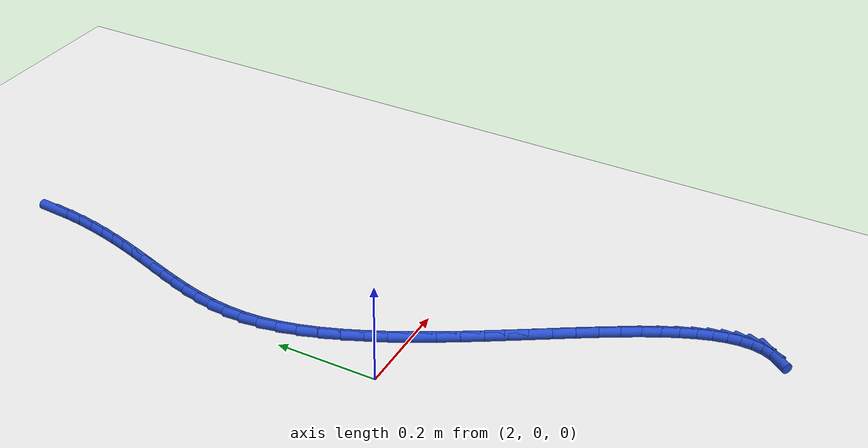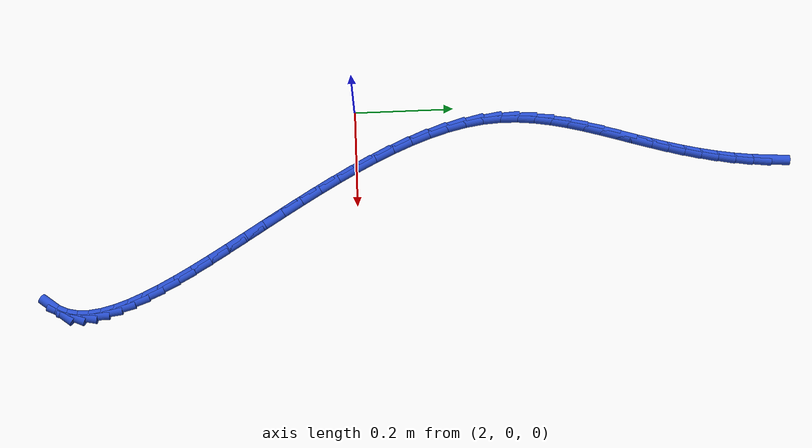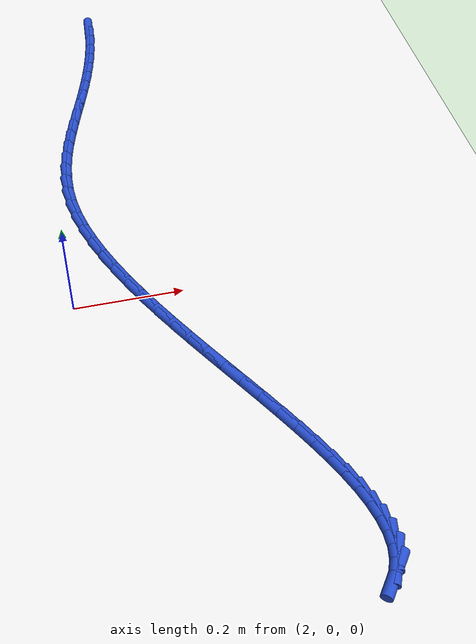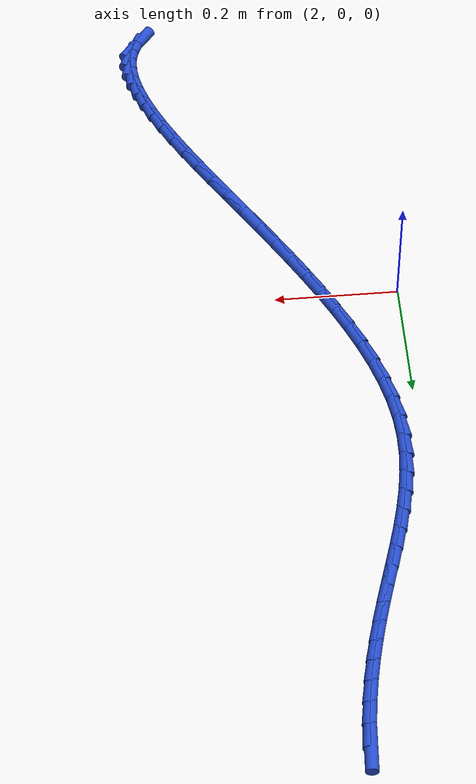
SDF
<sdf version="1.6">
 <world name="default">
  <model name="ground_plane">
   <static>1</static>
   <link name="link">
    <collision name="collision">
     <geometry><plane><normal>0 0 1</normal><size>100 100</size></plane></geometry>
     <surface><friction><ode><mu>100</mu><mu2>50</mu2></ode></friction></surface>
    </collision>
    <visual name="visual">
     <cast_shadows>0</cast_shadows>
     <geometry><plane><normal>0 0 1</normal><size>100 100</size></plane></geometry>
     <material>
      <script><uri>file://media/materials/scripts/gazebo.material</uri><name>Gazebo/WhiteGlow</name></script>
     </material>
    </visual>
   </link>
  </model>
  <model name="line">
   <link name="link_108">
    <pose>2.1391033608980607 0.828356439005961 0.01 0 1.57 1.5008523339261148</pose>
    <collision name="collision">
     <geometry><cylinder><radius>0.01</radius><length>0.08</length></cylinder></geometry>
    </collision>
    <visual name="visual">
     <material>
      <script><name>Gazebo/Blue</name><uri>file://media/materials/scripts/gazebo.material</uri></script>
     </material>
     <geometry><cylinder><radius>0.01</radius><length>0.08</length></cylinder></geometry>
    </visual>
   </link>
   <link name="link_109">
    <pose>2.136565684386006 0.7921340728498766 0.01 0 1.57 1.4433385522862583</pose>
    <collision name="collision">
     <geometry><cylinder><radius>0.01</radius><length>0.08</length></cylinder></geometry>
    </collision>
    <visual name="visual">
     <material>
      <script><name>Gazebo/Blue</name><uri>file://media/materials/scripts/gazebo.material</uri></script>
     </material>
     <geometry><cylinder><radius>0.01</radius><length>0.08</length></cylinder></geometry>
    </visual>
   </link>
   <link name="link_110">
    <pose>2.1319508020753375 0.7561232065971033 0.01 0 1.57 1.4016018858708506</pose>
    <collision name="collision">
     <geometry><cylinder><radius>0.01</radius><length>0.08</length></cylinder></geometry>
    </collision>
    <visual name="visual">
     <material>
      <script><name>Gazebo/Blue</name><uri>file://media/materials/scripts/gazebo.material</uri></script>
     </material>
     <geometry><cylinder><radius>0.01</radius><length>0.08</length></cylinder></geometry>
    </visual>
   </link>
   <link name="link_111">
    <pose>2.1260034568202646 0.7213083181919677 0.01 0 1.57 1.3647425149880148</pose>
    <collision name="collision">
     <geometry><cylinder><radius>0.01</radius><length>0.08</length></cylinder></geometry>
    </collision>
    <visual name="visual">
     <material>
      <script><name>Gazebo/Blue</name><uri>file://media/materials/scripts/gazebo.material</uri></script>
     </material>
     <geometry><cylinder><radius>0.01</radius><length>0.08</length></cylinder></geometry>
    </visual>
   </link>
   <link name="link_112">
    <pose>2.118959448252382 0.6876082217640473 0.01 0 1.57 1.3322008314156921</pose>
    <collision name="collision">
     <geometry><cylinder><radius>0.01</radius><length>0.08</length></cylinder></geometry>
    </collision>
    <visual name="visual">
     <material>
      <script><name>Gazebo/Blue</name><uri>file://media/materials/scripts/gazebo.material</uri></script>
     </material>
     <geometry><cylinder><radius>0.01</radius><length>0.08</length></cylinder></geometry>
    </visual>
   </link>
   <link name="link_113">
    <pose>2.1109719356842764 0.6547686928922605 0.01 0 1.57 1.3049200400770673</pose>
    <collision name="collision">
     <geometry><cylinder><radius>0.01</radius><length>0.08</length></cylinder></geometry>
    </collision>
    <visual name="visual">
     <material>
      <script><name>Gazebo/Blue</name><uri>file://media/materials/scripts/gazebo.material</uri></script>
     </material>
     <geometry><cylinder><radius>0.01</radius><length>0.08</length></cylinder></geometry>
    </visual>
   </link>
   <link name="link_114">
    <pose>2.1021940784285325 0.6225355071555247 0.01 0 1.57 1.2836407586981522</pose>
    <collision name="collision">
     <geometry><cylinder><radius>0.01</radius><length>0.08</length></cylinder></geometry>
    </collision>
    <visual name="visual">
     <material>
      <script><name>Gazebo/Blue</name><uri>file://media/materials/scripts/gazebo.material</uri></script>
     </material>
     <geometry><cylinder><radius>0.01</radius><length>0.08</length></cylinder></geometry>
    </visual>
   </link>
   <link name="link_115">
    <pose>2.0927790357977347 0.5906544401327576 0.01 0 1.57 1.2688626045944569</pose>
    <collision name="collision">
     <geometry><cylinder><radius>0.01</radius><length>0.08</length></cylinder></geometry>
    </collision>
    <visual name="visual">
     <material>
      <script><name>Gazebo/Blue</name><uri>file://media/materials/scripts/gazebo.material</uri></script>
     </material>
     <geometry><cylinder><radius>0.01</radius><length>0.08</length></cylinder></geometry>
    </visual>
   </link>
   <link name="link_116">
    <pose>2.0828799671044695 0.5588712674028777 0.01 0 1.57 1.2615018329283396</pose>
    <collision name="collision">
     <geometry><cylinder><radius>0.01</radius><length>0.08</length></cylinder></geometry>
    </collision>
    <visual name="visual">
     <material>
      <script><name>Gazebo/Blue</name><uri>file://media/materials/scripts/gazebo.material</uri></script>
     </material>
     <geometry><cylinder><radius>0.01</radius><length>0.08</length></cylinder></geometry>
    </visual>
   </link>
   <link name="link_117">
    <pose>2.0726807082373706 0.5269536776680801 0.01 0 1.57 1.2654736355705267</pose>
    <collision name="collision">
     <geometry><cylinder><radius>0.01</radius><length>0.08</length></cylinder></geometry>
    </collision>
    <visual name="visual">
     <material>
      <script><name>Gazebo/Blue</name><uri>file://media/materials/scripts/gazebo.material</uri></script>
     </material>
     <geometry><cylinder><radius>0.01</radius><length>0.08</length></cylinder></geometry>
    </visual>
   </link>
   <link name="link_118">
    <pose>2.062546170957088 0.4947987071137903 0.01 0 1.57 1.2820477855722374</pose>
    <collision name="collision">
     <geometry><cylinder><radius>0.01</radius><length>0.08</length></cylinder></geometry>
    </collision>
    <visual name="visual">
     <material>
      <script><name>Gazebo/Blue</name><uri>file://media/materials/scripts/gazebo.material</uri></script>
     </material>
     <geometry><cylinder><radius>0.01</radius><length>0.08</length></cylinder></geometry>
    </visual>
   </link>
   <link name="link_119">
    <pose>2.052907473168871 0.46235068479821345 0.01 0 1.57 1.3111659753999418</pose>
    <collision name="collision">
     <geometry><cylinder><radius>0.01</radius><length>0.08</length></cylinder></geometry>
    </collision>
    <visual name="visual">
     <material>
      <script><name>Gazebo/Blue</name><uri>file://media/materials/scripts/gazebo.material</uri></script>
     </material>
     <geometry><cylinder><radius>0.01</radius><length>0.08</length></cylinder></geometry>
    </visual>
   </link>
   <link name="link_120">
    <pose>2.044195831075032 0.4295540099958524 0.01 0 1.57 1.3528339632303061</pose>
    <collision name="collision">
     <geometry><cylinder><radius>0.01</radius><length>0.08</length></cylinder></geometry>
    </collision>
    <visual name="visual">
     <material>
      <script><name>Gazebo/Blue</name><uri>file://media/materials/scripts/gazebo.material</uri></script>
     </material>
     <geometry><cylinder><radius>0.01</radius><length>0.08</length></cylinder></geometry>
    </visual>
   </link>
   <link name="link_121">
    <pose>2.0368424608778852 0.39635308198121166 0.01 0 1.57 1.4069847625935814</pose>
    <collision name="collision">
     <geometry><cylinder><radius>0.01</radius><length>0.08</length></cylinder></geometry>
    </collision>
    <visual name="visual">
     <material>
      <script><name>Gazebo/Blue</name><uri>file://media/materials/scripts/gazebo.material</uri></script>
     </material>
     <geometry><cylinder><radius>0.01</radius><length>0.08</length></cylinder></geometry>
    </visual>
   </link>
   <link name="link_122">
    <pose>2.031278578779742 0.3626923000287948 0.01 0 1.57 1.4732848621718981</pose>
    <collision name="collision">
     <geometry><cylinder><radius>0.01</radius><length>0.08</length></cylinder></geometry>
    </collision>
    <visual name="visual">
     <material>
      <script><name>Gazebo/Blue</name><uri>file://media/materials/scripts/gazebo.material</uri></script>
     </material>
     <geometry><cylinder><radius>0.01</radius><length>0.08</length></cylinder></geometry>
    </visual>
   </link>
   <link name="link_123">
    <pose>2.027935400982915 0.32851606341310524 0.01 0 1.57 1.550905104108764</pose>
    <collision name="collision">
     <geometry><cylinder><radius>0.01</radius><length>0.08</length></cylinder></geometry>
    </collision>
    <visual name="visual">
     <material>
      <script><name>Gazebo/Blue</name><uri>file://media/materials/scripts/gazebo.material</uri></script>
     </material>
     <geometry><cylinder><radius>0.01</radius><length>0.08</length></cylinder></geometry>
    </visual>
   </link>
   <link name="link_124">
    <pose>2.027244143689719 0.29376877140864793 0.01 0 1.57 -1.5032936408445055</pose>
    <collision name="collision">
     <geometry><cylinder><radius>0.01</radius><length>0.08</length></cylinder></geometry>
    </collision>
    <visual name="visual">
     <material>
      <script><name>Gazebo/Blue</name><uri>file://media/materials/scripts/gazebo.material</uri></script>
     </material>
     <geometry><cylinder><radius>0.01</radius><length>0.08</length></cylinder></geometry>
    </visual>
   </link>
   <link name="link_125">
    <pose>2.0296356075817736 0.25839491287683464 0.01 0 1.57 -1.4132993826632723</pose>
    <collision name="collision">
     <geometry><cylinder><radius>0.01</radius><length>0.08</length></cylinder></geometry>
    </collision>
    <visual name="visual">
     <material>
      <script><name>Gazebo/Blue</name><uri>file://media/materials/scripts/gazebo.material</uri></script>
     </material>
     <geometry><cylinder><radius>0.01</radius><length>0.08</length></cylinder></geometry>
    </visual>
   </link>
   <link name="link_126">
    <pose>2.0353553905085082 0.22237890669847793 0.01 0 1.57 -1.3341999423239448</pose>
    <collision name="collision">
     <geometry><cylinder><radius>0.01</radius><length>0.08</length></cylinder></geometry>
    </collision>
    <visual name="visual">
     <material>
      <script><name>Gazebo/Blue</name><uri>file://media/materials/scripts/gazebo.material</uri></script>
     </material>
     <geometry><cylinder><radius>0.01</radius><length>0.08</length></cylinder></geometry>
    </visual>
   </link>
   <link name="link_127">
    <pose>2.044173134950503 0.18580778847405055 0.01 0 1.57 -1.2669206101764545</pose>
    <collision name="collision">
     <geometry><cylinder><radius>0.01</radius><length>0.08</length></cylinder></geometry>
    </collision>
    <visual name="visual">
     <material>
      <script><name>Gazebo/Blue</name><uri>file://media/materials/scripts/gazebo.material</uri></script>
     </material>
     <geometry><cylinder><radius>0.01</radius><length>0.08</length></cylinder></geometry>
    </visual>
   </link>
   <link name="link_128">
    <pose>2.0557830821188436 0.14878485043529682 0.01 0 1.57 -1.2101012310341006</pose>
    <collision name="collision">
     <geometry><cylinder><radius>0.01</radius><length>0.08</length></cylinder></geometry>
    </collision>
    <visual name="visual">
     <material>
      <script><name>Gazebo/Blue</name><uri>file://media/materials/scripts/gazebo.material</uri></script>
     </material>
     <geometry><cylinder><radius>0.01</radius><length>0.08</length></cylinder></geometry>
    </visual>
   </link>
   <link name="link_129">
    <pose>2.0698794732246193 0.11141338481396142 0.01 0 1.57 -1.1624144461730026</pose>
    <collision name="collision">
     <geometry><cylinder><radius>0.01</radius><length>0.08</length></cylinder></geometry>
    </collision>
    <visual name="visual">
     <material>
      <script><name>Gazebo/Blue</name><uri>file://media/materials/scripts/gazebo.material</uri></script>
     </material>
     <geometry><cylinder><radius>0.01</radius><length>0.08</length></cylinder></geometry>
    </visual>
   </link>
   <link name="link_130">
    <pose>2.086156549478916 0.07379668384178918 0.01 0 1.57 -1.1226769867878135</pose>
    <collision name="collision">
     <geometry><cylinder><radius>0.01</radius><length>0.08</length></cylinder></geometry>
    </collision>
    <visual name="visual">
     <material>
      <script><name>Gazebo/Blue</name><uri>file://media/materials/scripts/gazebo.material</uri></script>
     </material>
     <geometry><cylinder><radius>0.01</radius><length>0.08</length></cylinder></geometry>
    </visual>
   </link>
   <link name="link_131">
    <pose>2.1043085520928217 0.03603803975052468 0.01 0 1.57 -1.0898915288367401</pose>
    <collision name="collision">
     <geometry><cylinder><radius>0.01</radius><length>0.08</length></cylinder></geometry>
    </collision>
    <visual name="visual">
     <material>
      <script><name>Gazebo/Blue</name><uri>file://media/materials/scripts/gazebo.material</uri></script>
     </material>
     <geometry><cylinder><radius>0.01</radius><length>0.08</length></cylinder></geometry>
    </visual>
   </link>
   <link name="link_132">
    <pose>2.124029722277424 -0.0017592552280872656 0.01 0 1.57 -1.0632525242196353</pose>
    <collision name="collision">
     <geometry><cylinder><radius>0.01</radius><length>0.08</length></cylinder></geometry>
    </collision>
    <visual name="visual">
     <material>
      <script><name>Gazebo/Blue</name><uri>file://media/materials/scripts/gazebo.material</uri></script>
     </material>
     <geometry><cylinder><radius>0.01</radius><length>0.08</length></cylinder></geometry>
    </visual>
   </link>
   <link name="link_133">
    <pose>2.1450143012438105 -0.039491908862303124 0.01 0 1.57 -1.042136631332399</pose>
    <collision name="collision">
     <geometry><cylinder><radius>0.01</radius><length>0.08</length></cylinder></geometry>
    </collision>
    <visual name="visual">
     <material>
      <script><name>Gazebo/Blue</name><uri>file://media/materials/scripts/gazebo.material</uri></script>
     </material>
     <geometry><cylinder><radius>0.01</radius><length>0.08</length></cylinder></geometry>
    </visual>
   </link>
   <link name="link_134">
    <pose>2.1669565302030667 -0.07705662892037593 0.01 0 1.57 -1.0260892666148316</pose>
    <collision name="collision">
     <geometry><cylinder><radius>0.01</radius><length>0.08</length></cylinder></geometry>
    </collision>
    <visual name="visual">
     <material>
      <script><name>Gazebo/Blue</name><uri>file://media/materials/scripts/gazebo.material</uri></script>
     </material>
     <geometry><cylinder><radius>0.01</radius><length>0.08</length></cylinder></geometry>
    </visual>
   </link>
   <link name="link_135">
    <pose>2.189550650366281 -0.11435012317056198 0.01 0 1.57 -1.0148133995492807</pose>
    <collision name="collision">
     <geometry><cylinder><radius>0.01</radius><length>0.08</length></cylinder></geometry>
    </collision>
    <visual name="visual">
     <material>
      <script><name>Gazebo/Blue</name><uri>file://media/materials/scripts/gazebo.material</uri></script>
     </material>
     <geometry><cylinder><radius>0.01</radius><length>0.08</length></cylinder></geometry>
    </visual>
   </link>
   <link name="link_136">
    <pose>2.2124909029445403 -0.1512690993811167 0.01 0 1.57 -1.008163940230365</pose>
    <collision name="collision">
     <geometry><cylinder><radius>0.01</radius><length>0.08</length></cylinder></geometry>
    </collision>
    <visual name="visual">
     <material>
      <script><name>Gazebo/Blue</name><uri>file://media/materials/scripts/gazebo.material</uri></script>
     </material>
     <geometry><cylinder><radius>0.01</radius><length>0.08</length></cylinder></geometry>
    </visual>
   </link>
   <link name="link_137">
    <pose>2.2354715291489327 -0.18771026532029522 0.01 0 1.57 -1.006149961773073</pose>
    <collision name="collision">
     <geometry><cylinder><radius>0.01</radius><length>0.08</length></cylinder></geometry>
    </collision>
    <visual name="visual">
     <material>
      <script><name>Gazebo/Blue</name><uri>file://media/materials/scripts/gazebo.material</uri></script>
     </material>
     <geometry><cylinder><radius>0.01</radius><length>0.08</length></cylinder></geometry>
    </visual>
   </link>
   <link name="link_138">
    <pose>2.2581867701905445 -0.22357032875635297 0.01 0 1.57 -1.0089469610536328</pose>
    <collision name="collision">
     <geometry><cylinder><radius>0.01</radius><length>0.08</length></cylinder></geometry>
    </collision>
    <visual name="visual">
     <material>
      <script><name>Gazebo/Blue</name><uri>file://media/materials/scripts/gazebo.material</uri></script>
     </material>
     <geometry><cylinder><radius>0.01</radius><length>0.08</length></cylinder></geometry>
    </visual>
   </link>
   <link name="link_139">
    <pose>2.2803308672804636 -0.2587459974575452 0.01 0 1.57 -1.0169221092095138</pose>
    <collision name="collision">
     <geometry><cylinder><radius>0.01</radius><length>0.08</length></cylinder></geometry>
    </collision>
    <visual name="visual">
     <material>
      <script><name>Gazebo/Blue</name><uri>file://media/materials/scripts/gazebo.material</uri></script>
     </material>
     <geometry><cylinder><radius>0.01</radius><length>0.08</length></cylinder></geometry>
    </visual>
   </link>
   <link name="link_140">
    <pose>2.301598061629778 -0.29313397919212814 0.01 0 1.57 -1.0306769227939385</pose>
    <collision name="collision">
     <geometry><cylinder><radius>0.01</radius><length>0.08</length></cylinder></geometry>
    </collision>
    <visual name="visual">
     <material>
      <script><name>Gazebo/Blue</name><uri>file://media/materials/scripts/gazebo.material</uri></script>
     </material>
     <geometry><cylinder><radius>0.01</radius><length>0.08</length></cylinder></geometry>
    </visual>
   </link>
   <link name="link_141">
    <pose>2.321682594449573 -0.326630981728355 0.01 0 1.57 -1.051114070922945</pose>
    <collision name="collision">
     <geometry><cylinder><radius>0.01</radius><length>0.08</length></cylinder></geometry>
    </collision>
    <visual name="visual">
     <material>
      <script><name>Gazebo/Blue</name><uri>file://media/materials/scripts/gazebo.material</uri></script>
     </material>
     <geometry><cylinder><radius>0.01</radius><length>0.08</length></cylinder></geometry>
    </visual>
   </link>
   <link name="link_142">
    <pose>2.340278706950938 -0.35913371283448214 0.01 0 1.57 -1.0795381416719518</pose>
    <collision name="collision">
     <geometry><cylinder><radius>0.01</radius><length>0.08</length></cylinder></geometry>
    </collision>
    <visual name="visual">
     <material>
      <script><name>Gazebo/Blue</name><uri>file://media/materials/scripts/gazebo.material</uri></script>
     </material>
     <geometry><cylinder><radius>0.01</radius><length>0.08</length></cylinder></geometry>
    </visual>
   </link>
   <link name="link_143">
    <pose>2.3570806403449582 -0.3905388802787648 0.01 0 1.57 -1.1178035397665076</pose>
    <collision name="collision">
     <geometry><cylinder><radius>0.01</radius><length>0.08</length></cylinder></geometry>
    </collision>
    <visual name="visual">
     <material>
      <script><name>Gazebo/Blue</name><uri>file://media/materials/scripts/gazebo.material</uri></script>
     </material>
     <geometry><cylinder><radius>0.01</radius><length>0.08</length></cylinder></geometry>
    </visual>
   </link>
   <link name="link_144">
    <pose>2.3717826358427216 -0.4207431918294583 0.01 0 1.57 -1.1685233667570312</pose>
    <collision name="collision">
     <geometry><cylinder><radius>0.01</radius><length>0.08</length></cylinder></geometry>
    </collision>
    <visual name="visual">
     <material>
      <script><name>Gazebo/Blue</name><uri>file://media/materials/scripts/gazebo.material</uri></script>
     </material>
     <geometry><cylinder><radius>0.01</radius><length>0.08</length></cylinder></geometry>
    </visual>
   </link>
   <link name="link_145">
    <pose>2.384078934655317 -0.4496433552548181 0.01 0 1.57 -1.235340725057461</pose>
    <collision name="collision">
     <geometry><cylinder><radius>0.01</radius><length>0.08</length></cylinder></geometry>
    </collision>
    <visual name="visual">
     <material>
      <script><name>Gazebo/Blue</name><uri>file://media/materials/scripts/gazebo.material</uri></script>
     </material>
     <geometry><cylinder><radius>0.01</radius><length>0.08</length></cylinder></geometry>
    </visual>
   </link>
   <link name="link_146">
    <pose>2.3936637779938303 -0.4771360783230991 0.01 0 1.57 -1.323206471997239</pose>
    <collision name="collision">
     <geometry><cylinder><radius>0.01</radius><length>0.08</length></cylinder></geometry>
    </collision>
    <visual name="visual">
     <material>
      <script><name>Gazebo/Blue</name><uri>file://media/materials/scripts/gazebo.material</uri></script>
     </material>
     <geometry><cylinder><radius>0.01</radius><length>0.08</length></cylinder></geometry>
    </visual>
   </link>
   <link name="link_147">
    <pose>2.4002314070693487 -0.5031180688025569 0.01 0 1.57 -1.4384224541758004</pose>
    <collision name="collision">
     <geometry><cylinder><radius>0.01</radius><length>0.08</length></cylinder></geometry>
    </collision>
    <visual name="visual">
     <material>
      <script><name>Gazebo/Blue</name><uri>file://media/materials/scripts/gazebo.material</uri></script>
     </material>
     <geometry><cylinder><radius>0.01</radius><length>0.08</length></cylinder></geometry>
    </visual>
   </link>
   <link name="link_148">
    <pose>2.4034760630929597 -0.5274860344614466 0.01 0 1.57 1.5538414474882063</pose>
    <collision name="collision">
     <geometry><cylinder><radius>0.01</radius><length>0.08</length></cylinder></geometry>
    </collision>
    <visual name="visual">
     <material>
      <script><name>Gazebo/Blue</name><uri>file://media/materials/scripts/gazebo.material</uri></script>
     </material>
     <geometry><cylinder><radius>0.01</radius><length>0.08</length></cylinder></geometry>
    </visual>
   </link>
   <link name="link_149">
    <pose>2.4030919872757512 -0.5501366830680242 0.01 0 1.57 1.3663685088406001</pose>
    <collision name="collision">
     <geometry><cylinder><radius>0.01</radius><length>0.08</length></cylinder></geometry>
    </collision>
    <visual name="visual">
     <material>
      <script><name>Gazebo/Blue</name><uri>file://media/materials/scripts/gazebo.material</uri></script>
     </material>
     <geometry><cylinder><radius>0.01</radius><length>0.08</length></cylinder></geometry>
    </visual>
   </link>
   <link name="link_150">
    <pose>2.39877342082881 -0.5709667223905437 0.01 0 1.57 1.1456990289610125</pose>
    <collision name="collision">
     <geometry><cylinder><radius>0.01</radius><length>0.08</length></cylinder></geometry>
    </collision>
    <visual name="visual">
     <material>
      <script><name>Gazebo/Blue</name><uri>file://media/materials/scripts/gazebo.material</uri></script>
     </material>
     <geometry><cylinder><radius>0.01</radius><length>0.08</length></cylinder></geometry>
    </visual>
   </link>
   <link name="link_151">
    <pose>2.390214604963223 -0.5898728601972609 0.01 0 1.57 0.9106117527666417</pose>
    <collision name="collision">
     <geometry><cylinder><radius>0.01</radius><length>0.08</length></cylinder></geometry>
    </collision>
    <visual name="visual">
     <material>
      <script><name>Gazebo/Blue</name><uri>file://media/materials/scripts/gazebo.material</uri></script>
     </material>
     <geometry><cylinder><radius>0.01</radius><length>0.08</length></cylinder></geometry>
    </visual>
   </link>
  </model>
 </world>
</sdf>
